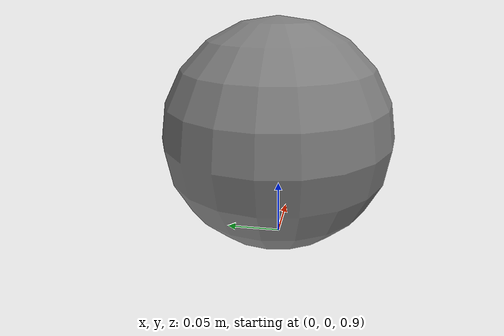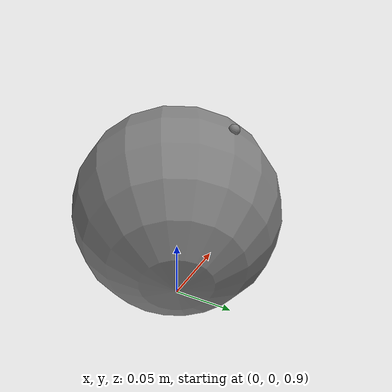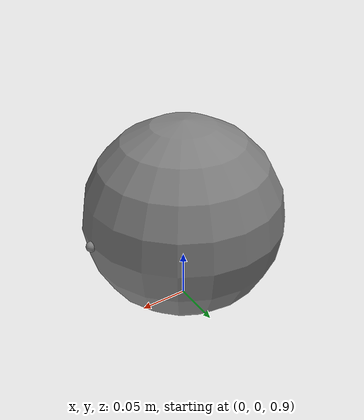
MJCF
<mujoco model="t34">
            <worldbody>
                <body name="b1" pos="0 0 1">
                    <joint type="free"/>
                    <geom name="g1" type="sphere" size="0.1" mass="1"/>
                    <site name="s1" pos="0 0 0"/>
                    <site name="s_ref" pos="0.1 0 0"/>
                </body>
            </worldbody>
            <sensor>
                <framepos site="s1" reftype="site" refname="s_ref"/>
                <framepos site="s1" reftype="body" refname="b1"/>
                <framepos site="s1" reftype="xbody" refname="b1"/>
                <framepos site="s1" reftype="geom" refname="g1"/>
            </sensor>
        </mujoco>
